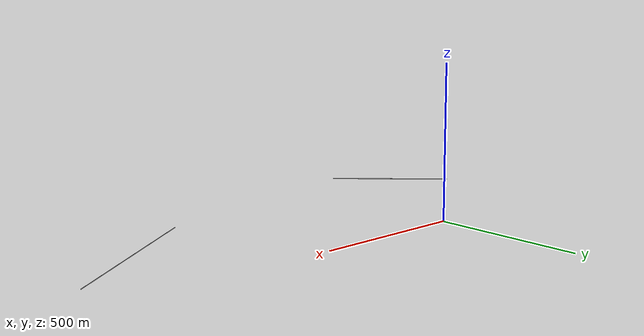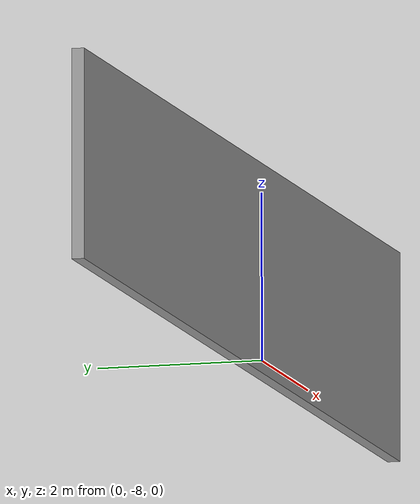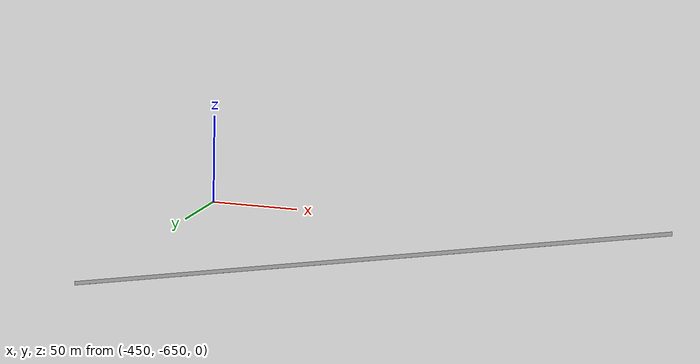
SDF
<?xml version='1.0'?>
<sdf version='1.7'>
  <model name='maze_w_wall'>
    <pose>389.149 -332.896 0 0 -0 0</pose>
    <link name='Wall_3'>
      <collision name='Wall_3_Collision'>
        <geometry>
          <box>
            <size>401.25 0.15 2.5</size>
          </box>
        </geometry>
        <pose>0 0 1.25 0 -0 0</pose>
      </collision>
      <visual name='Wall_3_Visual'>
        <pose>0 0 1.25 0 -0 0</pose>
        <geometry>
          <box>
            <size>401.25 0.15 2.5</size>
          </box>
        </geometry>
        <material>
          <script>
            <uri>file://media/materials/scripts/gazebo.material</uri>
            <name>Gazebo/Grey</name>
          </script>
          <ambient>1 1 1 1</ambient>
        </material>
        <meta>
          <layer>0</layer>
        </meta>
      </visual>
      <pose>-698.834 -190.98 0 0 -0 2.35619</pose>
    </link>
    <link name='Wall_32'>
      <collision name='Wall_32_Collision'>
        <geometry>
          <box>
            <size>13.75 0.15 2.5</size>
          </box>
        </geometry>
        <pose>0 0 1.25 0 -0 0</pose>
      </collision>
      <visual name='Wall_32_Visual'>
        <pose>0 0 1.25 0 -0 0</pose>
        <geometry>
          <box>
            <size>13.75 0.15 2.5</size>
          </box>
        </geometry>
        <material>
          <script>
            <uri>file://media/materials/scripts/gazebo.material</uri>
            <name>Gazebo/Grey</name>
          </script>
          <ambient>1 1 1 1</ambient>
        </material>
        <meta>
          <layer>0</layer>
        </meta>
      </visual>
      <pose>-389.236 325.184 0 0 -0 3.14159</pose>
    </link>
    <link name='Wall_6'>
      <collision name='Wall_6_Collision'>
        <geometry>
          <box>
            <size>659.5 0.15 2.5</size>
          </box>
        </geometry>
        <pose>0 0 1.25 0 -0 0</pose>
      </collision>
      <visual name='Wall_6_Visual'>
        <pose>0 0 1.25 0 -0 0</pose>
        <geometry>
          <box>
            <size>659.5 0.15 2.5</size>
          </box>
        </geometry>
        <material>
          <script>
            <uri>file://media/materials/scripts/gazebo.material</uri>
            <name>Gazebo/Grey</name>
          </script>
          <ambient>1 1 1 1</ambient>
        </material>
        <meta>
          <layer>0</layer>
        </meta>
      </visual>
      <pose>555.141 -20.1851 0 0 -0 -2.61799</pose>
    </link>
    <static>1</static>
  </model>
</sdf>
